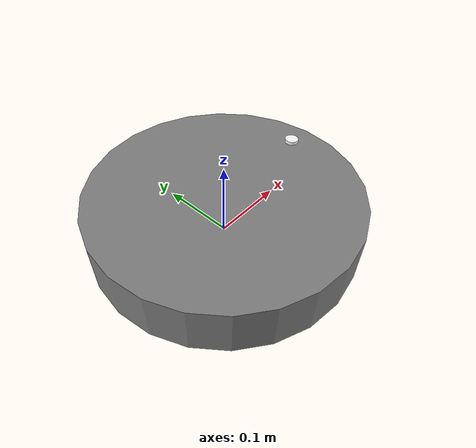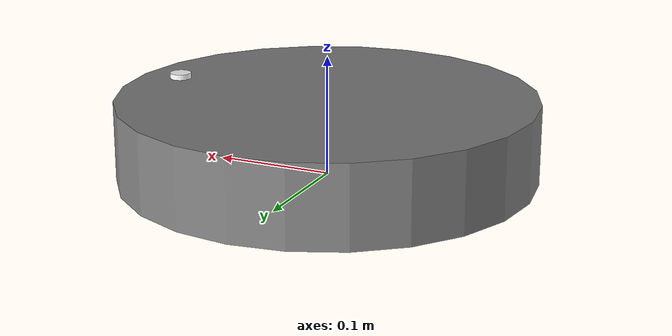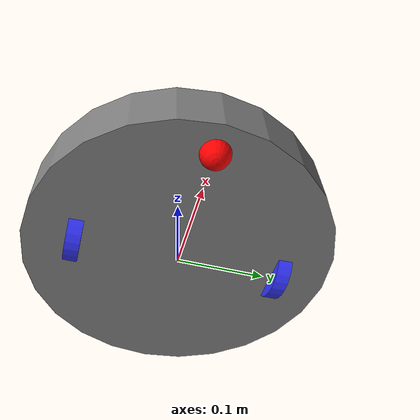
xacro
<?xml version="1.0"?>
<robot xmlns:xacro="http://www.ros.org/wiki/xacro">

    <xacro:include filename="inertial_macros.xacro" />

    <!-- Adding the colors of the robot's components -->

    <material name="gray">
        <color rgba="0.5 0.5 0.5 1" />
    </material>

    <material name="blue">
        <color rgba="0.2 0.2 1.0 1.0" />
    </material>

    <material name="red">
        <color rgba="1 0 0 1" />
    </material>

    <material name="white">
        <color rgba="1 1 1 1" />
    </material>

    <!-- Creating base_link -->

    <link name="base_link">

    </link>

    <!-- Creating the joint to base_footprint-->
    <joint name="base_footprint_joint" type="fixed">
        <parent link="base_link"/>
        <child link="base_footprint"/>
        <origin xyz="0.0 0.0 0.0" rpy="0.0 0.0 0.0"/>
    </joint>

    <!-- Creating the link to base_footprint-->
    <link name="base_footprint"/>

    <!-- Creating one joint for the unite the base_link to the chassis_link -->
    <joint name="chassis_joint" type="fixed">
        <parent link="base_link" />
        <child link="chassis_link" />
        <origin xyz="-0.17425 0.0 0.0" />
    </joint>

    <!-- Creating the properties of the chassis -->
    <link name="chassis_link">
        <visual>
            <origin xyz="0.17425 0.0 0.03347" />
            <geometry>
                <cylinder radius="0.17425" length="0.06694" />
            </geometry>
            <material name="gray" />
        </visual>
        <collision>
            <origin xyz="0.17425 0.0 0.03347" />
            <geometry>
                <cylinder radius="0.17425" length="0.06694" />
            </geometry>
        </collision>
        <xacro:inertial_cylinder mass="1.49" length="0.06694" radius="0.17425">
            <origin xyz="0.17425 0.0 0.03347" rpy="0.0 0.0 0.0" />
        </xacro:inertial_cylinder>
    </link>
    <gazebo reference="chassis_link">
        <material>Gazebo/Gray</material>
    </gazebo>

    <!-- Creating the joint of the left wheel -->
    <joint name="left_wheel_joint" type="continuous">
        <parent link="base_link" />
        <child link="left_wheel_link" />
        <origin xyz="0.0 0.1175 0.02" rpy="-${pi/2} 0.0 0.0" />
        <axis xyz="0.0 0.0 1.0" />
    </joint>

    <!-- Creating the properties of the left wheel -->
    <link name="left_wheel_link">
        <visual>
            <geometry>
                <cylinder radius="0.036" length="0.016" />
            </geometry>
            <material name="blue" />
        </visual>
        <collision>
            <geometry>
                <sphere radius="0.036" />
            </geometry>
        </collision>
        <xacro:inertial_cylinder mass="0.5" length="0.016" radius="0.036">
            <origin xyz="0.0 0.0 0.0" rpy="0.0 0.0 0.0" />
        </xacro:inertial_cylinder>
    </link>
    <gazebo reference="left_wheel_link">
        <material>Gazebo/Blue</material>
    </gazebo>

    <!-- Creating the joint of the right wheel -->
    <joint name="right_wheel_joint" type="continuous">
        <parent link="base_link" />
        <child link="right_wheel_link" />
        <origin xyz="0.0 -0.1175 0.02" rpy="${pi/2} 0.0 0.0" />
        <axis xyz="0.0 0.0 -1.0" />
    </joint>

    <!-- Creating the properties of the left wheel -->
    <link name="right_wheel_link">
        <visual>
            <geometry>
                <cylinder radius="0.036" length="0.016" />
            </geometry>
            <material name="blue" />
        </visual>
        <collision>
            <geometry>
                <sphere radius="0.036" />
            </geometry>
        </collision>
        <xacro:inertial_cylinder mass="0.5" length="0.016" radius="0.036">
            <origin xyz="0.0 0.0 0.0" rpy="0.0 0.0 0.0" />
        </xacro:inertial_cylinder>
    </link>
    <gazebo reference="right_wheel_link">
        <material>Gazebo/Blue</material>
    </gazebo>

    <!-- Creating the joint of the caster wheel -->
    <joint name="caster_wheel_joint" type="fixed">
        <parent link="base_link" />
        <child link="caster_wheel_link" />
        <origin xyz="0.142 0.0 0.0" />
    </joint>

    <!-- Creating the properties of the caster wheel -->
    <link name="caster_wheel_link">
        <visual>
            <geometry>
                <sphere radius="0.016" />
            </geometry>
            <material name="red" />
        </visual>
        <collision>
            <geometry>
                <sphere radius="0.016" />
            </geometry>
        </collision>
        <xacro:inertial_sphere mass="1.0" radius="0.016">
            <origin xyz="0.0 0.0 0.0" rpy="0.0 0.0 0.0" />
        </xacro:inertial_sphere>
    </link>
    <gazebo reference="caster_wheel_link">
        <material>Gazebo/Red</material>
        <mu1 value="0.001" />
        <mu2 value="0.001" />
    </gazebo>

    <!-- Creating the identificator to the front -->
    <joint name="identificator_joint" type="fixed">
        <parent link="base_link" />
        <child link="identificator_link" />
        <origin xyz="0.139 0.0 0.06694" />
    </joint>

    <!-- Creating the properties of the identificator -->
    <link name="identificator_link">
        <visual>
            <material name="white" />
            <geometry>
                <cylinder radius="0.009" length="0.00931" />
            </geometry>
        </visual>
        <collision>
            <geometry>
                <cylinder radius="0.009" length="0.00931" />
            </geometry>
        </collision>
        <xacro:inertial_cylinder mass="0.01" length="0.00931" radius="0.009">
            <origin xyz="0.0 0.0 0.0" rpy="0.0 0.0 0.0" />
        </xacro:inertial_cylinder>
        <gazebo reference="identificator_link">
            <material>Gazebo/White</material>
        </gazebo>
    </link>
</robot>
